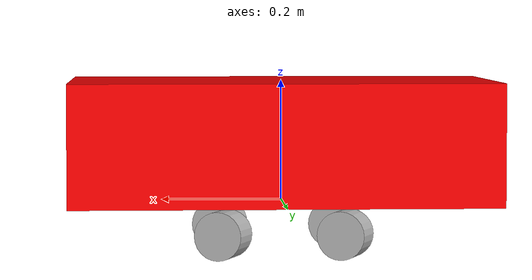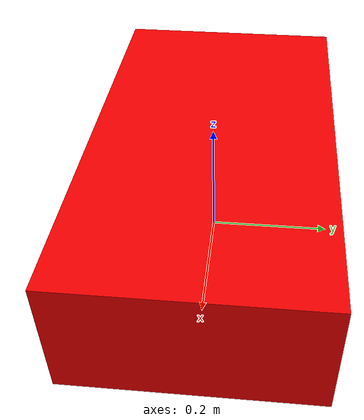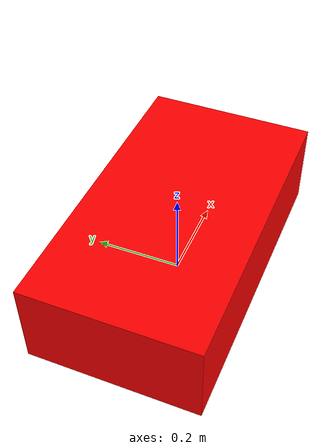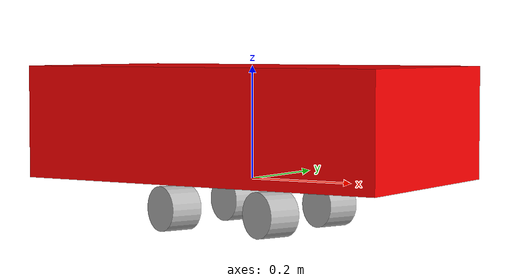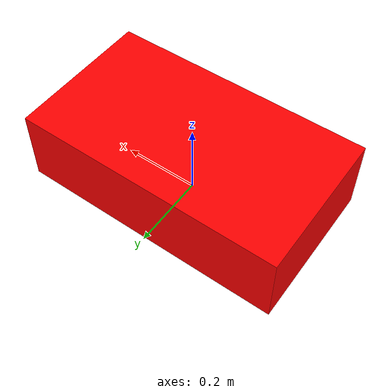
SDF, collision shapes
<?xml version="1.0" ?>
<sdf version="1.5">
  <model name="jsc_bot">
  <static>false</static>

  <!-- ****************** ROBOT BASE FOOTPRINT ***************************  -->
  <pose>0.0 0.0 0.0 0.0 0.0 0.0</pose>
  <link name="base_footprint"/>

  <!-- ********************** ROBOT BASE *********************************  -->
  <link name="base_link">

    <collision name="base_collision">
      <pose>0 0 0.1 0 0 0</pose>
      <geometry>
        <box>
          <size>0.70 0.39 0.20</size>
        </box>
      </geometry>
    </collision>

    <visual name="base_visual">
      <pose>0 0 -0.05 1.5707963267949 0 3.141592654</pose>
      <geometry>
        <mesh>
          <uri>model://basic_mobile_bot_description/meshes/robot_base.stl</uri>
          <scale>1.0 1.0 1.0</scale>
        </mesh>
      </geometry>
      <material>
        <ambient>1.0 0.0 0.0 1.0</ambient>
        <diffuse>1.0 0.0 0.0 1.0</diffuse>
        <specular>0.0 0.0 0.0 1.0</specular>
        <emissive>0.0 0.0 0.0 1.0</emissive>
      </material>
    </visual>
  </link>

  <!-- *********************** LIDAR SETUP *********************************  -->
  <link name="lidar_link">
    <sensor name="bmb_lidar" type="lidar">
      <always_on>true</always_on>
      <update_rate>10.0</update_rate>
      <lidar>
        <position_sensing>
          <horizontal>
            <noise type="gaussian">
              <mean>0.0</mean>
              <stddev>1e-2</stddev>
            </noise>
          </horizontal>
          <vertical>
            <noise type="gaussian">
              <mean>0.0</mean>
              <stddev>1</stddev>
            </noise>
          </vertical>
        </position_sensing>
      </lidar>
      <plugin name="jsc_bot_lidar" filename="libgazebo_ros_lidar_sensor.so">
        <ros>
          <remapping>~/out:=lidar/fix</remapping>
        </ros>
      </plugin>
    </sensor>
  </link>

  <!-- *********************** DRIVE WHEELS ******************************  -->
  <link name="front_left_wheel_link">

  <!-- Especifica la posición y orientacion del link, los 3 ultimos numeros son los ańgulos de rotacion en radianes-->
    <pose>-0.1 0.1 -0.05 0.35 1.570796 1.570796</pose>

    <collision name="front_left_wheel_collision">
      <geometry>
        <cylinder>
          <radius>0.04</radius>
          <length>0.06</length>
        </cylinder>
      </geometry>
    </collision>

    <visual name="front_left_wheel_visual">
      <geometry>
        <cylinder>
          <radius>0.04</radius>
          <length>0.06</length>
        </cylinder>
      </geometry>
    </visual>
  </link>

  <link name="front_right_wheel_link">
    <pose>0.1 0.1 -0.05 0.35 1.570796 1.570796</pose>

    <collision name="front_right_wheel_collision">
      <geometry>
        <cylinder>
          <radius>0.04</radius>
          <length>0.06</length>
        </cylinder>
      </geometry>
    </collision>

    <visual name="front_right_wheel_visual">
      <geometry>
        <cylinder>
          <radius>0.04</radius>
          <length>0.06</length>
        </cylinder>
      </geometry>
    </visual>
  </link>

  <link name="back_left_wheel_link">
    <pose>-0.1 -0.1 -0.05 0.35 1.570796 1.570796</pose>

    <collision name="back_left_wheel_collision">
      <geometry>
        <cylinder>
          <radius>0.04</radius>
          <length>0.06</length>
        </cylinder>
      </geometry>
    </collision>

    <visual name="back_left_wheel_visual">
      <geometry>
        <cylinder>
          <radius>0.04</radius>
          <length>0.06</length>
        </cylinder>
      </geometry>
    </visual>
  </link>

  <link name="back_right_wheel_link">
    <pose>0.1 -0.1 -0.05 0.35 1.570796 1.570796</pose>

    <collision name="back_right_wheel_collision">
      <geometry>
        <cylinder>
          <radius>0.04</radius>
          <length>0.06</length>
        </cylinder>
      </geometry>
    </collision>

    <visual name="back_right_wheel_visual">
      <geometry>
        <cylinder>
          <radius>0.04</radius>
          <length>0.06</length>
        </cylinder>
      </geometry>
    </visual>
  </link>

  <!-- ************************ JOINTS ***********************************  -->
  <!-- Pose of the joint is the same as the child link frame -->
  <!-- Axis is the axis of rotation relative to the child link frame -->

  <joint name="base_joint" type="fixed">
    <parent>base_footprint</parent>
    <child>base_link</child>
    <pose>0 0 0 0 0 0</pose>
  </joint>

  <joint name="front_left_wheel_joint" type="revolute">
    <parent>base_link</parent>
    <child>front_left_wheel_link</child>
    <pose>0 0 0 0 0 0</pose>
    <axis>
      <xyz>0 0 1</xyz>
    </axis>
  </joint>

    <joint name="front_right_wheel_joint" type="revolute">
    <parent>base_link</parent>
    <child>front_right_wheel_link</child>
    <pose>0 0 0 0 0 0</pose>
    <axis>
      <xyz>0 0 1</xyz>
    </axis>
  </joint>

    <joint name="back_left_wheel_joint" type="revolute">
    <parent>base_link</parent>
    <child>back_left_wheel_link</child>
    <pose>0 0 0 0 0 0</pose>
    <axis>
      <xyz>0 0 1</xyz>
    </axis>
  </joint>

    <joint name="back_right_wheel_joint" type="revolute">
    <parent>base_link</parent>
    <child>back_right_wheel_link</child>
    <pose>0 0 0 0 0 0</pose>
    <axis>
      <xyz>0 0 1</xyz>
    </axis>
  </joint>

  <joint name="lidar_joint" type="fixed">
    <parent>base_link</parent>
    <child>lidar_link</child>
    <pose>0 0 0 0 0 0</pose>
  </joint>

 <!-- *********************** WHEEL ODOMETRY ***************************    -->
  <plugin name="basic_mobile_bot_diff_drive" filename="libgazebo_ros_diff_drive.so">

    <update_rate>30</update_rate>

    <!-- wheels -->
    <front_left_joint>front_left_wheel_joint</front_left_joint>
    <front_right_joint>front_right_wheel_joint</front_right_joint>

    <back_left_joint>back_left_wheel_joint</back_left_joint>
    <back_right_joint>back_right_wheel_joint</back_right_joint>

    <!-- kinematics -->
    <wheel_separation>0.52</wheel_separation>
    <wheel_diameter>0.28</wheel_diameter>

    <!-- limits -->
    <max_wheel_torque>20</max_wheel_torque>
    <max_wheel_acceleration>1.0</max_wheel_acceleration>

    <!-- Receive velocity commands on this ROS topic -->
    <command_topic>cmd_vel</command_topic>

    <!-- output -->
    <!-- When false, publish no wheel odometry data to a ROS topic -->
    <publish_odom>true</publish_odom>

    <!-- When true, publish coordinate transform from odom to base_footprint -->
    <!-- I usually use the robot_localization package to publish this transform -->
    <publish_odom_tf>false</publish_odom_tf>

    <!-- When true, publish coordinate transform from base_link to the wheels -->
    <!-- The robot_state_publisher package is often used to publish this transform -->
    <publish_wheel_tf>false</publish_wheel_tf>

    <odometry_topic>odom</odometry_topic>
    <odometry_frame>odom</odometry_frame>
    <robot_base_frame>base_footprint</robot_base_frame>

    <!-- Odometry source, 0 for ENCODER, 1 for WORLD, defaults to WORLD -->
    <odometry_source>0</odometry_source>

    <!-- Change the ROS topic we will publish the odometry data to -->
    <ros>
      <remapping>odom:=wheel/odometry</remapping>
    </ros>

  </plugin>

 <!-- *********************** JOINT STATE PUBLISHER *********************   -->

  <plugin name="jsc_bot_joint_state" filename="libgazebo_ros_joint_state_publisher.so">
    <ros>
      <remapping>~/out:=joint_states</remapping>
    </ros>
    <update_rate>30</update_rate>

    <joint_name>front_left_wheel_joint</joint_name>
    <joint_name>front_right_wheel_joint</joint_name>

    <joint_name>back_left_wheel_joint</joint_name>
    <joint_name>back_right_wheel_joint</joint_name>

  </plugin>

  </model>
</sdf>
